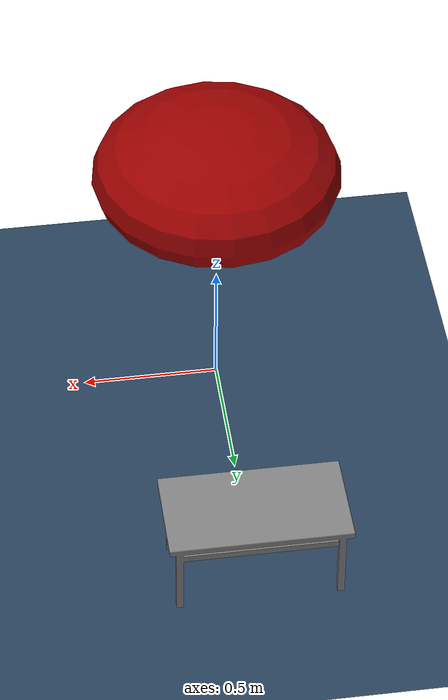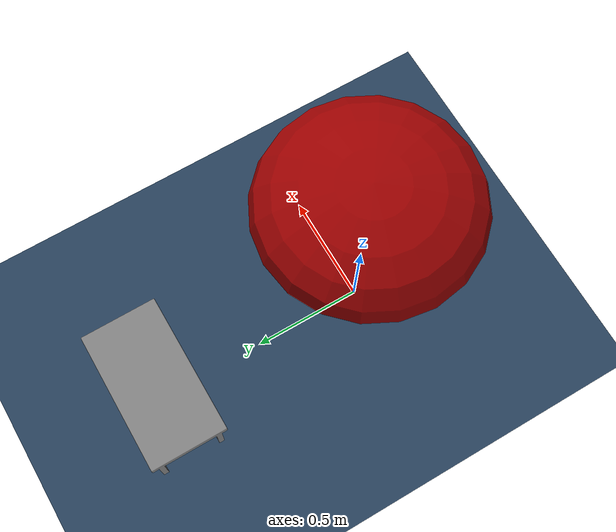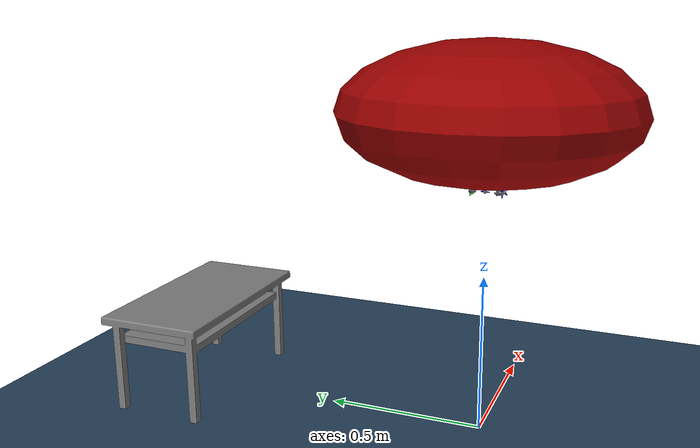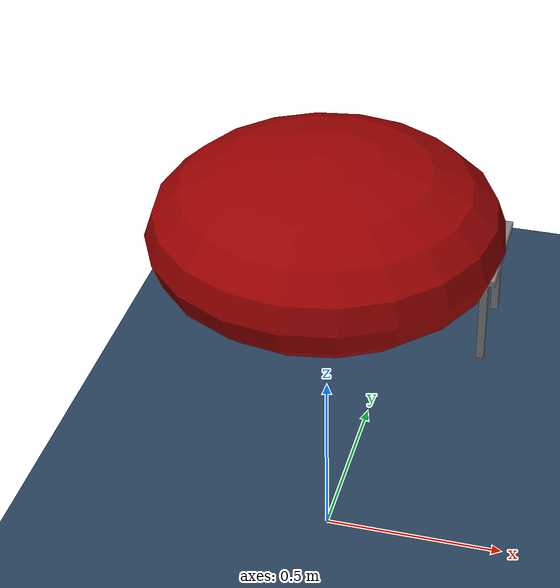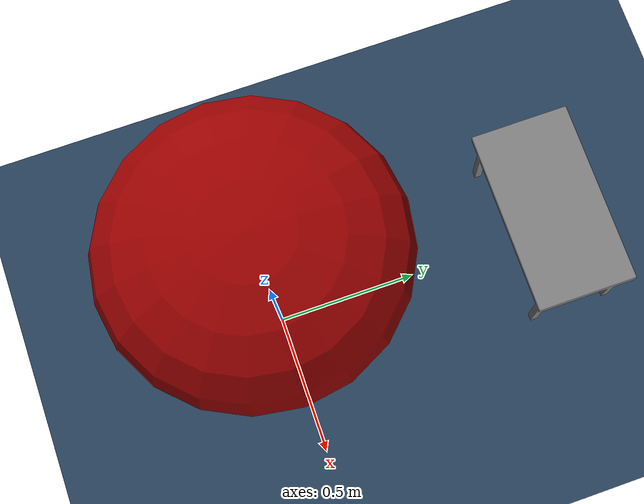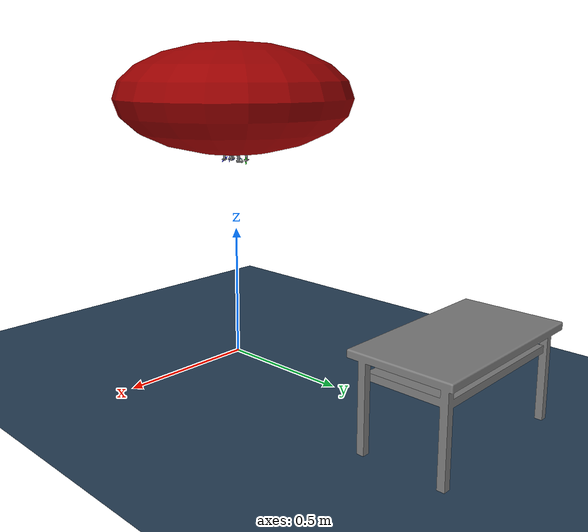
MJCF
<mujoco>
  <compiler assetdir="assets" />
  <option gravity="0 0 -9.8" viscosity="0.01" wind="0.5 0 0" />
  <option gravity="0 0 -9.8"  />

  <default>
    <motor ctrlrange="-1 1" />
    <default class="imported">
      <mesh scale="0.001 0.001 0.001" />
    </default>
    <default class="collision">
      <geom group="3" type="box" />
    </default>
    <default class="balloon">
      <!--
        0.167 is the MKS density of helium at room temperature.
        Note this does not take into account the mass of the rubber,
        which is likely not insignificant.
      -->
      <geom density="0.167" fluidshape="ellipsoid" />
      <default class="pink">
        <geom rgba="1 .6 .7 1" />
        <site rgba="1 .6 .7 1" />
      </default>
      <default class="blue">
        <geom rgba=".3 .7 .9 1" />
        <site rgba=".3 .7 .9 1" />
      </default>
      <default class="green">
        <geom rgba=".4 .9 .5 1" />
        <site rgba=".4 .9 .5 1" />
      </default>
      <default class="orange">
        <geom rgba="1 .4 0 1" />
        <site rgba="1 .4 0 1" />
      </default>
    </default>
  </default>

  <visual>
    <headlight diffuse="0.6 0.6 0.6" ambient="0.3 0.3 0.3" specular="0 0 0" />
    <rgba haze="0.15 0.25 0.35 1" />
    <global azimuth="-20" elevation="-20" ellipsoidinertia="true" />
  </visual>

  <asset>
    <texture type="skybox" builtin="gradient" rgb1="0.3 0.5 0.7" rgb2="0 0 0" width="512"
      height="30720" />
    <texture type="2d" name="groundplane" builtin="checker" mark="edge" rgb1="0.2 0.3 0.4"
      rgb2="0.1 0.2 0.3"
      markrgb="0.8 0.8 0.8" width="300" height="300" />
    <material name="groundplane" texture="groundplane" texuniform="true" texrepeat="5 5"
      reflectance="0.2" />

    <mesh file="Gondola.obj" class="imported" />
    <mesh file="MotorMount.obj" class="imported" />
    <mesh file="MotorMountHolder.obj" class="imported" />
    <mesh file="Motor v1.obj" class="imported" />
    <mesh name="desk" file="desk.obj" scale=".01 .01 .01" />
  </asset>

  <worldbody>
    <light pos="0 0 1.5" dir="0 0 -1" directional="true" />
    <geom name="floor" size="0 0 0.05" type="plane" material="groundplane" />
    <geom name="chasis" type="mesh" mesh="desk" pos="0 1 .3" quat="1 -1 0 0"/>
  </worldbody>

  <compiler angle="degree" coordinate="local" inertiafromgeom="true" />

  <worldbody>

    <body childclass="pink" gravcomp="7.2" pos="0 0 1">
      <freejoint />
      <geom name="mylar" type="ellipsoid" size="0.45 0.45 0.21" rgba="0.6 0 0 1" />
      <site name="mountBalloon4" pos = "-0.020 -0.034 -0.21" ></site>
      <site name="mountBalloon2" pos = "0.020 0.035 -0.21"></site>
      <site name="mountBalloon3" pos = "-.020 0.034 -0.21"></site>
      <site name="mountBalloon1" pos = "0.020 -0.035 -0.21"></site>
    </body>

    <body name="gondola" pos="0 0 .79" quat="0 1 0 0">
      <freejoint/>
      <geom type="mesh" mesh="Gondola" pos="0 0 0" quat="0 1 0 0" />
      <body name="m1" pos="0.020 0.035 0" quat="0 1 0.45 0">
      <site name="mountGondola1" pos="0 0 0.0"/>
        <geom type="mesh" mesh="MotorMountHolder" name="m1" />
        <body name="polpusion" pos="0.005 0.005 -0.024" euler="90 0 0">
          <geom type="mesh" mesh="Motor v1" />
          <body name="propeller" pos="0 0 0.021">
            <joint type="hinge" name="prop_joint" damping="0.03" axis="0 0 1" />
            <site name="thrust1" pos="0 0 0" />
            <geom type="ellipsoid" size="0.0025 0.015 0.001" euler="0 0 45 " rgba="0 0 1 1" />
          </body>
        </body>
      </body>
      <body name="m2" pos="0.020 -0.035 0" quat="0 1 -0.45 0">
        <geom type="mesh" mesh="MotorMountHolder" name="m2" mass="0.08" />
      <site name="mountGondola2" pos="0 0 0.0"/>
        <body name="polpusion2" pos="0.005 -0.005 -0.024" euler="90 45 0">
          <geom type="mesh" mesh="Motor v1" euler="0 135 0" />
          <body name="propeller2" pos="0.015 0 -0.015" euler="0 135 0">
            <joint type="hinge" name="prop_joint2" damping="0.03" axis="0 0 1" />
            <geom type="ellipsoid" size="0.0025 0.015 0.001" rgba="0 1 0 1" />
            <site name="thrust2" pos="0 0 0" />
          </body>
        </body>
      </body>

      <body name="m3" pos="-0.020 -0.034 0" quat="0 -1 2 0">
        <geom type="mesh" mesh="MotorMountHolder" name="m3" />
      <site name="mountGondola3" pos="0 0 0.0"/>
        <body name="polpusion3" pos="0.005 0.005 -0.024" euler="90 45 0">
          <geom type="mesh" mesh="Motor v1" euler="0 -45 0" />
          <body name="propeller3" pos="-0.015 0 0.015" euler="0 -45 0">
            <joint type="hinge" name="prop_joint3" damping="0.03" axis="0 0 1" />
            <geom type="ellipsoid" size="0.0025 0.015 0.001" rgba="0 1 0 1" />
            <site name="thrust3" pos="0 0 0" />
          </body>
        </body>
      </body>

      <body name="m4" pos="-0.020 0.035 0" quat="0 0.2 0.45 0">
        <geom type="mesh" mesh="MotorMountHolder" name="m4" mass="0.08" />
      <site name="mountGondola4" pos="0 0 0.0"/>
        <body name="polpusion4" pos="0.005 -0.005 -0.024" euler="-90 0 0">
          <geom type="mesh" mesh="Motor v1" />
          <body name="propeller4" pos="0 0 0.02">
            <joint type="hinge" name="prop_joint4" damping="0.03" axis="0 0 1" />
            <geom type="ellipsoid" size="0.0025 0.015 0.001" rgba="0 0 1 1" />
            <site name="thrust4" pos="0 0 0" />
          </body>
        </body>
      </body>

      <body name="m5" pos="0.020 0 0" >
        <body name="polpusion5"  >
          <geom type="mesh" mesh="Motor v1" />
          <body name="propeller5" pos="0 0 0.02">
            <joint type="hinge" name="prop_joint5" damping="0.03" axis="0 0 1" />
            <geom type="ellipsoid" size="0.0025 0.015 0.001" rgba="0 0 1 1" />
            <site name="thrust5" pos="0 0 0" />
          </body>
        </body>
      </body>

      <body name="m6" pos="-0.020 0 0">
        <body name="polpusion6" >
          <geom type="mesh" mesh="Motor v1" />
          <body name="propeller6" pos="0 0 0.02">
            <joint type="hinge" name="prop_joint6" damping="0.03" axis="0 0 1" />
            <geom type="ellipsoid" size="0.0025 0.015 0.001" rgba="0 0 1 1" />
            <site name="thrust6" pos="0 0 0" />
          </body>
        </body>
      </body>

        <site name="imu" pos="0 0 0" />
        <camera name="blimpCamera" pos="0 -0.05 -0.02" quat=" 1 -1 0 0 " />
      </body>
  </worldbody>

  <actuator>
    <motor name="prop_joint" site="thrust1" />
    <motor name="prop_joint2" site="thrust2" />
    <motor name="prop_joint3" site="thrust3" />
    <motor name="prop_joint4" site="thrust4" />
    <motor name="prop_joint5" site="thrust5" gear="0 0 1 0 0 .0201"/>
    <motor name="prop_joint6" site="thrust6" gear="0 0 1 0 0 .0201"/>
  </actuator>

  <tendon>
    <spatial range="0 0.0001">
      <site site="mountBalloon1"/>
      <site site="mountGondola1"/>
    </spatial>
    <spatial range="0 0.0001">
      <site site="mountBalloon2"/>
      <site site="mountGondola2"/>
    </spatial>
    <spatial range="0 0.0001">
      <site site="mountBalloon3"/>
      <site site="mountGondola3"/>
    </spatial>
    <spatial range="0 0.0001">
      <site site="mountBalloon4"/>
      <site site="mountGondola4"/>
    </spatial>

  </tendon>

  <sensor>
    <gyro name="body_gyro" site="imu" />
    <accelerometer name="body_linacc" site="imu" />
    <framequat name="body_quat" objtype="site" objname="imu" />
  </sensor>

</mujoco>
